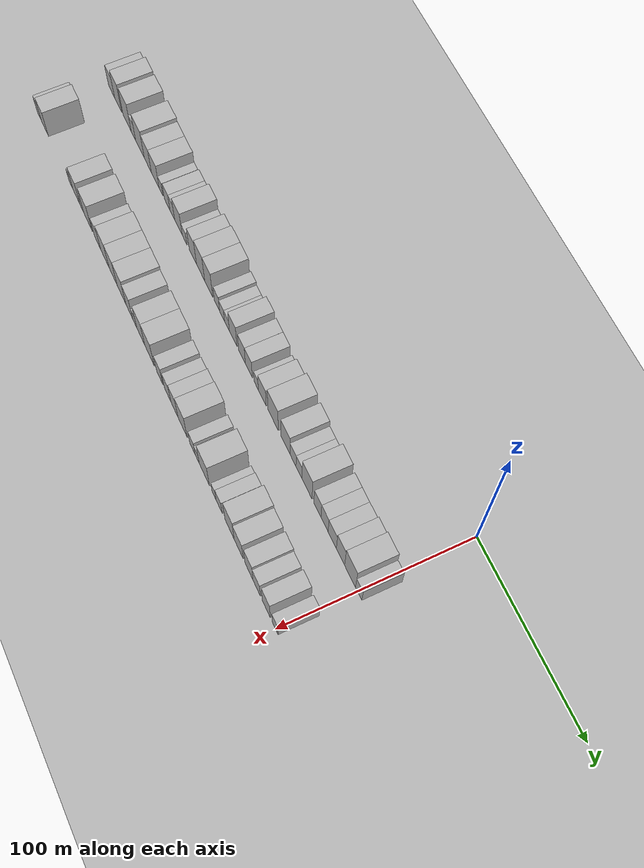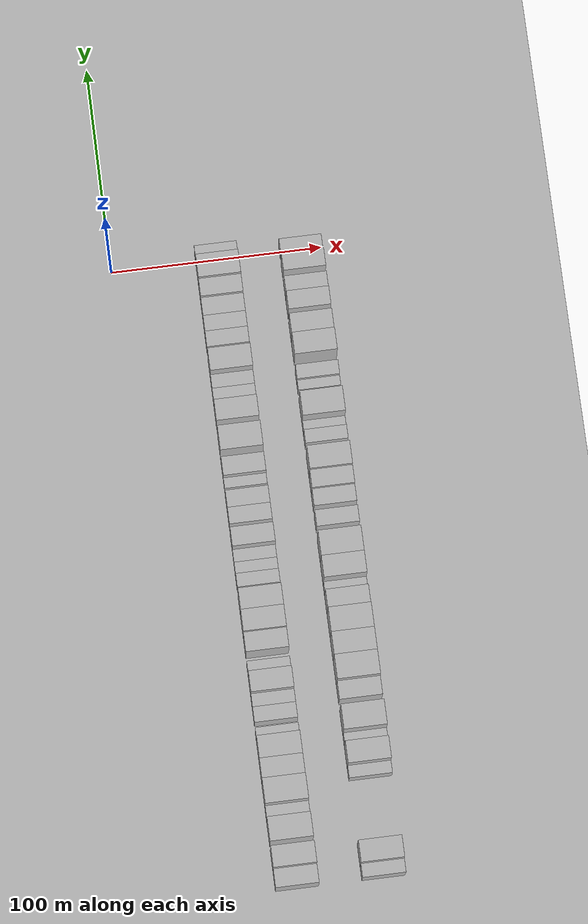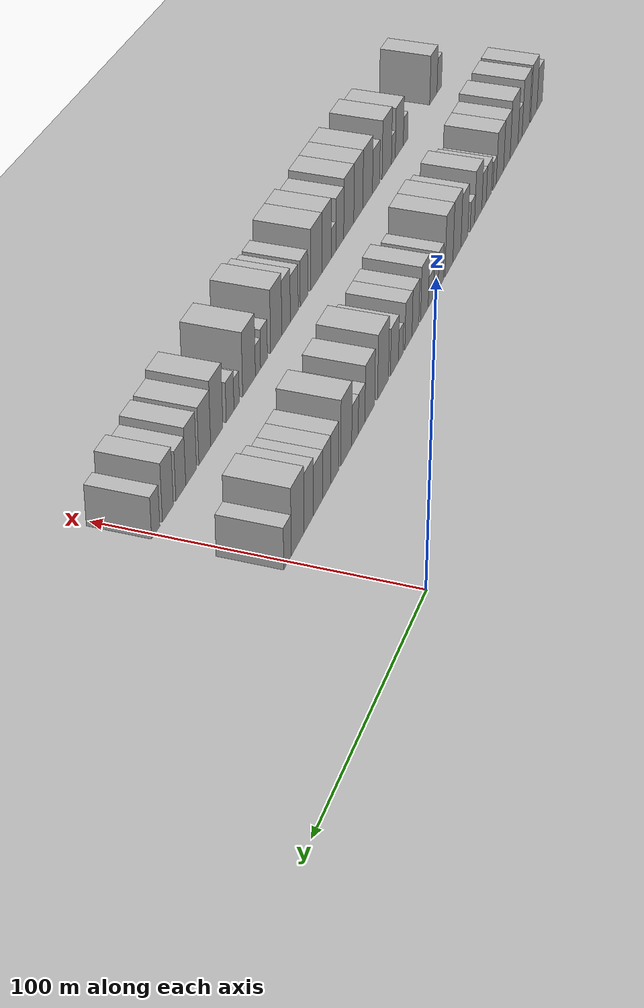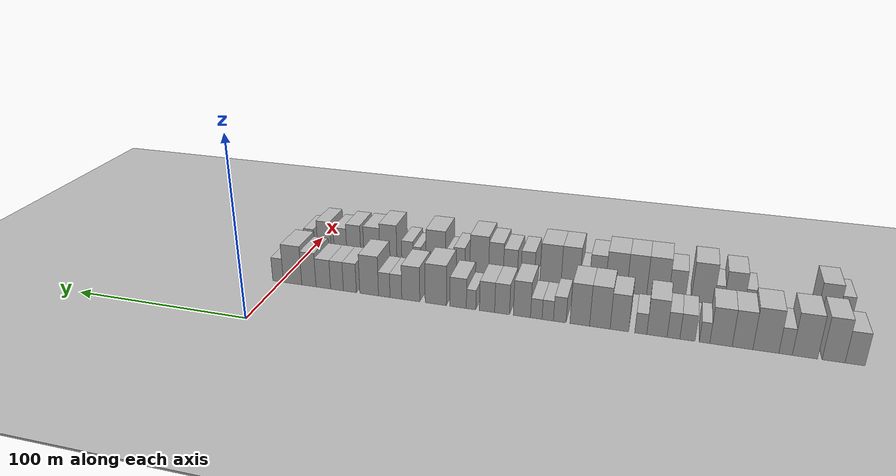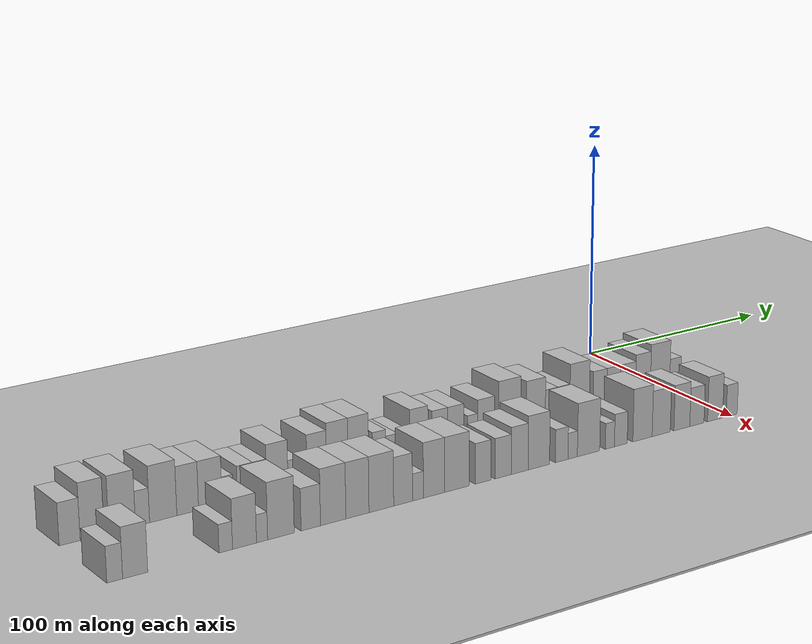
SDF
<sdf version="1.6">
 <world name="default">
  <include><name>ground_plane_1</name><uri>model://HANNAS_ground_plane</uri></include>
  <include>
   <name>ground_plane_2</name>
   <uri>model://HANNAS_ground_plane</uri>
   <pose>100 0 0  0 0 0</pose>
  </include>
  <model name="building_1">
   <static>1</static>
   <pose>50.0000 -295.6604 0 0.000000 0.000000 0.000000</pose>
   <link name="link">
    <pose>0 0 9.00 0 0 0</pose>
    <collision name="collision"><geometry><box><size>20.0000 8.6792 18.0000</size></box></geometry></collision>
    <visual name="visual">
     <cast_shadows>0</cast_shadows>
     <geometry><box><size>20.0000 8.6792 18.0000</size></box></geometry>
     <material>
      <script>
       <uri>model://HANNAS_wall/materials/scripts</uri>
       <uri>model://HANNAS_wall/materials/textures</uri>
       <name>vrc/HANNAS_wall</name>
      </script>
     </material>
    </visual>
   </link>
  </model>
  <model name="building_2">
   <static>1</static>
   <pose>50.0000 -286.3089 0 0.000000 0.000000 0.000000</pose>
   <link name="link">
    <pose>0 0 12.00 0 0 0</pose>
    <collision name="collision"><geometry><box><size>20.0000 10.0237 24.0000</size></box></geometry></collision>
    <visual name="visual">
     <cast_shadows>0</cast_shadows>
     <geometry><box><size>20.0000 10.0237 24.0000</size></box></geometry>
     <material>
      <script>
       <uri>model://HANNAS_wall/materials/scripts</uri>
       <uri>model://HANNAS_wall/materials/textures</uri>
       <name>vrc/HANNAS_wall</name>
      </script>
     </material>
    </visual>
   </link>
  </model>
  <model name="building_3">
   <static>1</static>
   <pose>50.0000 -273.6609 0 0.000000 0.000000 0.000000</pose>
   <link name="link">
    <pose>0 0 12.00 0 0 0</pose>
    <collision name="collision"><geometry><box><size>20.0000 11.2724 24.0000</size></box></geometry></collision>
    <visual name="visual">
     <cast_shadows>0</cast_shadows>
     <geometry><box><size>20.0000 11.2724 24.0000</size></box></geometry>
     <material>
      <script>
       <uri>model://HANNAS_wall/materials/scripts</uri>
       <uri>model://HANNAS_wall/materials/textures</uri>
       <name>vrc/HANNAS_wall</name>
      </script>
     </material>
    </visual>
   </link>
  </model>
  <model name="building_4">
   <static>1</static>
   <pose>50.0000 -264.9814 0 0.000000 0.000000 0.000000</pose>
   <link name="link">
    <pose>0 0 7.50 0 0 0</pose>
    <collision name="collision"><geometry><box><size>20.0000 6.0866 15.0000</size></box></geometry></collision>
    <visual name="visual">
     <cast_shadows>0</cast_shadows>
     <geometry><box><size>20.0000 6.0866 15.0000</size></box></geometry>
     <material>
      <script>
       <uri>model://HANNAS_wall/materials/scripts</uri>
       <uri>model://HANNAS_wall/materials/textures</uri>
       <name>vrc/HANNAS_wall</name>
      </script>
     </material>
    </visual>
   </link>
  </model>
  <model name="building_5">
   <static>1</static>
   <pose>50.0000 -256.0350 0 0.000000 0.000000 0.000000</pose>
   <link name="link">
    <pose>0 0 12.00 0 0 0</pose>
    <collision name="collision"><geometry><box><size>20.0000 11.8062 24.0000</size></box></geometry></collision>
    <visual name="visual">
     <cast_shadows>0</cast_shadows>
     <geometry><box><size>20.0000 11.8062 24.0000</size></box></geometry>
     <material>
      <script>
       <uri>model://HANNAS_wall/materials/scripts</uri>
       <uri>model://HANNAS_wall/materials/textures</uri>
       <name>vrc/HANNAS_wall</name>
      </script>
     </material>
    </visual>
   </link>
  </model>
  <model name="building_6">
   <static>1</static>
   <pose>50.0000 -245.3482 0 0.000000 0.000000 0.000000</pose>
   <link name="link">
    <pose>0 0 10.50 0 0 0</pose>
    <collision name="collision"><geometry><box><size>20.0000 9.5675 21.0000</size></box></geometry></collision>
    <visual name="visual">
     <cast_shadows>0</cast_shadows>
     <geometry><box><size>20.0000 9.5675 21.0000</size></box></geometry>
     <material>
      <script>
       <uri>model://HANNAS_wall/materials/scripts</uri>
       <uri>model://HANNAS_wall/materials/textures</uri>
       <name>vrc/HANNAS_wall</name>
      </script>
     </material>
    </visual>
   </link>
  </model>
  <model name="building_7">
   <static>1</static>
   <pose>50.0000 -235.3438 0 0.000000 0.000000 0.000000</pose>
   <link name="link">
    <pose>0 0 10.50 0 0 0</pose>
    <collision name="collision"><geometry><box><size>20.0000 10.4414 21.0000</size></box></geometry></collision>
    <visual name="visual">
     <cast_shadows>0</cast_shadows>
     <geometry><box><size>20.0000 10.4414 21.0000</size></box></geometry>
     <material>
      <script>
       <uri>model://HANNAS_wall/materials/scripts</uri>
       <uri>model://HANNAS_wall/materials/textures</uri>
       <name>vrc/HANNAS_wall</name>
      </script>
     </material>
    </visual>
   </link>
  </model>
  <model name="building_8">
   <static>1</static>
   <pose>50.0000 -227.6628 0 0.000000 0.000000 0.000000</pose>
   <link name="link">
    <pose>0 0 6.00 0 0 0</pose>
    <collision name="collision"><geometry><box><size>20.0000 4.9206 12.0000</size></box></geometry></collision>
    <visual name="visual">
     <cast_shadows>0</cast_shadows>
     <geometry><box><size>20.0000 4.9206 12.0000</size></box></geometry>
     <material>
      <script>
       <uri>model://HANNAS_wall/materials/scripts</uri>
       <uri>model://HANNAS_wall/materials/textures</uri>
       <name>vrc/HANNAS_wall</name>
      </script>
     </material>
    </visual>
   </link>
  </model>
  <model name="building_9">
   <static>1</static>
   <pose>50.0000 -219.5754 0 0.000000 0.000000 0.000000</pose>
   <link name="link">
    <pose>0 0 7.50 0 0 0</pose>
    <collision name="collision"><geometry><box><size>20.0000 7.2541 15.0000</size></box></geometry></collision>
    <visual name="visual">
     <cast_shadows>0</cast_shadows>
     <geometry><box><size>20.0000 7.2541 15.0000</size></box></geometry>
     <material>
      <script>
       <uri>model://HANNAS_wall/materials/scripts</uri>
       <uri>model://HANNAS_wall/materials/textures</uri>
       <name>vrc/HANNAS_wall</name>
      </script>
     </material>
    </visual>
   </link>
  </model>
  <model name="building_10">
   <static>1</static>
   <pose>50.0000 -212.8982 0 0.000000 0.000000 0.000000</pose>
   <link name="link">
    <pose>0 0 7.50 0 0 0</pose>
    <collision name="collision"><geometry><box><size>20.0000 6.1003 15.0000</size></box></geometry></collision>
    <visual name="visual">
     <cast_shadows>0</cast_shadows>
     <geometry><box><size>20.0000 6.1003 15.0000</size></box></geometry>
     <material>
      <script>
       <uri>model://HANNAS_wall/materials/scripts</uri>
       <uri>model://HANNAS_wall/materials/textures</uri>
       <name>vrc/HANNAS_wall</name>
      </script>
     </material>
    </visual>
   </link>
  </model>
  <model name="building_11">
   <static>1</static>
   <pose>50.0000 -204.9200 0 0.000000 0.000000 0.000000</pose>
   <link name="link">
    <pose>0 0 10.50 0 0 0</pose>
    <collision name="collision"><geometry><box><size>20.0000 9.8560 21.0000</size></box></geometry></collision>
    <visual name="visual">
     <cast_shadows>0</cast_shadows>
     <geometry><box><size>20.0000 9.8560 21.0000</size></box></geometry>
     <material>
      <script>
       <uri>model://HANNAS_wall/materials/scripts</uri>
       <uri>model://HANNAS_wall/materials/textures</uri>
       <name>vrc/HANNAS_wall</name>
      </script>
     </material>
    </visual>
   </link>
  </model>
  <model name="building_12">
   <static>1</static>
   <pose>50.0000 -197.0589 0 0.000000 0.000000 0.000000</pose>
   <link name="link">
    <pose>0 0 6.00 0 0 0</pose>
    <collision name="collision"><geometry><box><size>20.0000 5.8663 12.0000</size></box></geometry></collision>
    <visual name="visual">
     <cast_shadows>0</cast_shadows>
     <geometry><box><size>20.0000 5.8663 12.0000</size></box></geometry>
     <material>
      <script>
       <uri>model://HANNAS_wall/materials/scripts</uri>
       <uri>model://HANNAS_wall/materials/textures</uri>
       <name>vrc/HANNAS_wall</name>
      </script>
     </material>
    </visual>
   </link>
  </model>
  <model name="building_13">
   <static>1</static>
   <pose>50.0000 -186.5327 0 0.000000 0.000000 0.000000</pose>
   <link name="link">
    <pose>0 0 10.50 0 0 0</pose>
    <collision name="collision"><geometry><box><size>20.0000 9.1861 21.0000</size></box></geometry></collision>
    <visual name="visual">
     <cast_shadows>0</cast_shadows>
     <geometry><box><size>20.0000 9.1861 21.0000</size></box></geometry>
     <material>
      <script>
       <uri>model://HANNAS_wall/materials/scripts</uri>
       <uri>model://HANNAS_wall/materials/textures</uri>
       <name>vrc/HANNAS_wall</name>
      </script>
     </material>
    </visual>
   </link>
  </model>
  <model name="building_14">
   <static>1</static>
   <pose>50.0000 -176.8102 0 0.000000 0.000000 0.000000</pose>
   <link name="link">
    <pose>0 0 12.00 0 0 0</pose>
    <collision name="collision"><geometry><box><size>20.0000 10.2588 24.0000</size></box></geometry></collision>
    <visual name="visual">
     <cast_shadows>0</cast_shadows>
     <geometry><box><size>20.0000 10.2588 24.0000</size></box></geometry>
     <material>
      <script>
       <uri>model://HANNAS_wall/materials/scripts</uri>
       <uri>model://HANNAS_wall/materials/textures</uri>
       <name>vrc/HANNAS_wall</name>
      </script>
     </material>
    </visual>
   </link>
  </model>
  <model name="building_15">
   <static>1</static>
   <pose>50.0000 -166.6893 0 0.000000 0.000000 0.000000</pose>
   <link name="link">
    <pose>0 0 12.00 0 0 0</pose>
    <collision name="collision"><geometry><box><size>20.0000 9.9830 24.0000</size></box></geometry></collision>
    <visual name="visual">
     <cast_shadows>0</cast_shadows>
     <geometry><box><size>20.0000 9.9830 24.0000</size></box></geometry>
     <material>
      <script>
       <uri>model://HANNAS_wall/materials/scripts</uri>
       <uri>model://HANNAS_wall/materials/textures</uri>
       <name>vrc/HANNAS_wall</name>
      </script>
     </material>
    </visual>
   </link>
  </model>
  <model name="building_16">
   <static>1</static>
   <pose>50.0000 -156.4822 0 0.000000 0.000000 0.000000</pose>
   <link name="link">
    <pose>0 0 7.50 0 0 0</pose>
    <collision name="collision"><geometry><box><size>20.0000 6.4312 15.0000</size></box></geometry></collision>
    <visual name="visual">
     <cast_shadows>0</cast_shadows>
     <geometry><box><size>20.0000 6.4312 15.0000</size></box></geometry>
     <material>
      <script>
       <uri>model://HANNAS_wall/materials/scripts</uri>
       <uri>model://HANNAS_wall/materials/textures</uri>
       <name>vrc/HANNAS_wall</name>
      </script>
     </material>
    </visual>
   </link>
  </model>
  <model name="building_17">
   <static>1</static>
   <pose>50.0000 -150.3267 0 0.000000 0.000000 0.000000</pose>
   <link name="link">
    <pose>0 0 6.00 0 0 0</pose>
    <collision name="collision"><geometry><box><size>20.0000 5.8798 12.0000</size></box></geometry></collision>
    <visual name="visual">
     <cast_shadows>0</cast_shadows>
     <geometry><box><size>20.0000 5.8798 12.0000</size></box></geometry>
     <material>
      <script>
       <uri>model://HANNAS_wall/materials/scripts</uri>
       <uri>model://HANNAS_wall/materials/textures</uri>
       <name>vrc/HANNAS_wall</name>
      </script>
     </material>
    </visual>
   </link>
  </model>
  <model name="building_18">
   <static>1</static>
   <pose>50.0000 -144.3886 0 0.000000 0.000000 0.000000</pose>
   <link name="link">
    <pose>0 0 6.00 0 0 0</pose>
    <collision name="collision"><geometry><box><size>20.0000 5.9963 12.0000</size></box></geometry></collision>
    <visual name="visual">
     <cast_shadows>0</cast_shadows>
     <geometry><box><size>20.0000 5.9963 12.0000</size></box></geometry>
     <material>
      <script>
       <uri>model://HANNAS_wall/materials/scripts</uri>
       <uri>model://HANNAS_wall/materials/textures</uri>
       <name>vrc/HANNAS_wall</name>
      </script>
     </material>
    </visual>
   </link>
  </model>
  <model name="building_19">
   <static>1</static>
   <pose>50.0000 -136.8716 0 0.000000 0.000000 0.000000</pose>
   <link name="link">
    <pose>0 0 10.50 0 0 0</pose>
    <collision name="collision"><geometry><box><size>20.0000 9.0378 21.0000</size></box></geometry></collision>
    <visual name="visual">
     <cast_shadows>0</cast_shadows>
     <geometry><box><size>20.0000 9.0378 21.0000</size></box></geometry>
     <material>
      <script>
       <uri>model://HANNAS_wall/materials/scripts</uri>
       <uri>model://HANNAS_wall/materials/textures</uri>
       <name>vrc/HANNAS_wall</name>
      </script>
     </material>
    </visual>
   </link>
  </model>
  <model name="building_20">
   <static>1</static>
   <pose>50.0000 -126.3946 0 0.000000 0.000000 0.000000</pose>
   <link name="link">
    <pose>0 0 9.00 0 0 0</pose>
    <collision name="collision"><geometry><box><size>20.0000 7.9164 18.0000</size></box></geometry></collision>
    <visual name="visual">
     <cast_shadows>0</cast_shadows>
     <geometry><box><size>20.0000 7.9164 18.0000</size></box></geometry>
     <material>
      <script>
       <uri>model://HANNAS_wall/materials/scripts</uri>
       <uri>model://HANNAS_wall/materials/textures</uri>
       <name>vrc/HANNAS_wall</name>
      </script>
     </material>
    </visual>
   </link>
  </model>
  <model name="building_21">
   <static>1</static>
   <pose>50.0000 -118.3697 0 0.000000 0.000000 0.000000</pose>
   <link name="link">
    <pose>0 0 9.00 0 0 0</pose>
    <collision name="collision"><geometry><box><size>20.0000 8.1333 18.0000</size></box></geometry></collision>
    <visual name="visual">
     <cast_shadows>0</cast_shadows>
     <geometry><box><size>20.0000 8.1333 18.0000</size></box></geometry>
     <material>
      <script>
       <uri>model://HANNAS_wall/materials/scripts</uri>
       <uri>model://HANNAS_wall/materials/textures</uri>
       <name>vrc/HANNAS_wall</name>
      </script>
     </material>
    </visual>
   </link>
  </model>
  <model name="building_22">
   <static>1</static>
   <pose>50.0000 -109.7680 0 0.000000 0.000000 0.000000</pose>
   <link name="link">
    <pose>0 0 6.00 0 0 0</pose>
    <collision name="collision"><geometry><box><size>20.0000 5.0701 12.0000</size></box></geometry></collision>
    <visual name="visual">
     <cast_shadows>0</cast_shadows>
     <geometry><box><size>20.0000 5.0701 12.0000</size></box></geometry>
     <material>
      <script>
       <uri>model://HANNAS_wall/materials/scripts</uri>
       <uri>model://HANNAS_wall/materials/textures</uri>
       <name>vrc/HANNAS_wall</name>
      </script>
     </material>
    </visual>
   </link>
  </model>
  <model name="building_23">
   <static>1</static>
   <pose>50.0000 -102.7718 0 0.000000 0.000000 0.000000</pose>
   <link name="link">
    <pose>0 0 9.00 0 0 0</pose>
    <collision name="collision"><geometry><box><size>20.0000 8.9224 18.0000</size></box></geometry></collision>
    <visual name="visual">
     <cast_shadows>0</cast_shadows>
     <geometry><box><size>20.0000 8.9224 18.0000</size></box></geometry>
     <material>
      <script>
       <uri>model://HANNAS_wall/materials/scripts</uri>
       <uri>model://HANNAS_wall/materials/textures</uri>
       <name>vrc/HANNAS_wall</name>
      </script>
     </material>
    </visual>
   </link>
  </model>
  <model name="building_24">
   <static>1</static>
   <pose>50.0000 -90.4507 0 0.000000 0.000000 0.000000</pose>
   <link name="link">
    <pose>0 0 12.00 0 0 0</pose>
    <collision name="collision"><geometry><box><size>20.0000 11.7199 24.0000</size></box></geometry></collision>
    <visual name="visual">
     <cast_shadows>0</cast_shadows>
     <geometry><box><size>20.0000 11.7199 24.0000</size></box></geometry>
     <material>
      <script>
       <uri>model://HANNAS_wall/materials/scripts</uri>
       <uri>model://HANNAS_wall/materials/textures</uri>
       <name>vrc/HANNAS_wall</name>
      </script>
     </material>
    </visual>
   </link>
  </model>
  <model name="building_25">
   <static>1</static>
   <pose>50.0000 -76.5439 0 0.000000 0.000000 0.000000</pose>
   <link name="link">
    <pose>0 0 10.50 0 0 0</pose>
    <collision name="collision"><geometry><box><size>20.0000 10.0936 21.0000</size></box></geometry></collision>
    <visual name="visual">
     <cast_shadows>0</cast_shadows>
     <geometry><box><size>20.0000 10.0936 21.0000</size></box></geometry>
     <material>
      <script>
       <uri>model://HANNAS_wall/materials/scripts</uri>
       <uri>model://HANNAS_wall/materials/textures</uri>
       <name>vrc/HANNAS_wall</name>
      </script>
     </material>
    </visual>
   </link>
  </model>
  <model name="building_26">
   <static>1</static>
   <pose>50.0000 -68.1587 0 0.000000 0.000000 0.000000</pose>
   <link name="link">
    <pose>0 0 7.50 0 0 0</pose>
    <collision name="collision"><geometry><box><size>20.0000 6.6767 15.0000</size></box></geometry></collision>
    <visual name="visual">
     <cast_shadows>0</cast_shadows>
     <geometry><box><size>20.0000 6.6767 15.0000</size></box></geometry>
     <material>
      <script>
       <uri>model://HANNAS_wall/materials/scripts</uri>
       <uri>model://HANNAS_wall/materials/textures</uri>
       <name>vrc/HANNAS_wall</name>
      </script>
     </material>
    </visual>
   </link>
  </model>
  <model name="building_27">
   <static>1</static>
   <pose>50.0000 -61.5330 0 0.000000 0.000000 0.000000</pose>
   <link name="link">
    <pose>0 0 7.50 0 0 0</pose>
    <collision name="collision"><geometry><box><size>20.0000 6.5746 15.0000</size></box></geometry></collision>
    <visual name="visual">
     <cast_shadows>0</cast_shadows>
     <geometry><box><size>20.0000 6.5746 15.0000</size></box></geometry>
     <material>
      <script>
       <uri>model://HANNAS_wall/materials/scripts</uri>
       <uri>model://HANNAS_wall/materials/textures</uri>
       <name>vrc/HANNAS_wall</name>
      </script>
     </material>
    </visual>
   </link>
  </model>
  <model name="building_28">
   <static>1</static>
   <pose>50.0000 -52.8710 0 0.000000 0.000000 0.000000</pose>
   <link name="link">
    <pose>0 0 12.00 0 0 0</pose>
    <collision name="collision"><geometry><box><size>20.0000 10.7494 24.0000</size></box></geometry></collision>
    <visual name="visual">
     <cast_shadows>0</cast_shadows>
     <geometry><box><size>20.0000 10.7494 24.0000</size></box></geometry>
     <material>
      <script>
       <uri>model://HANNAS_wall/materials/scripts</uri>
       <uri>model://HANNAS_wall/materials/textures</uri>
       <name>vrc/HANNAS_wall</name>
      </script>
     </material>
    </visual>
   </link>
  </model>
  <model name="building_29">
   <static>1</static>
   <pose>50.0000 -41.6983 0 0.000000 0.000000 0.000000</pose>
   <link name="link">
    <pose>0 0 9.00 0 0 0</pose>
    <collision name="collision"><geometry><box><size>20.0000 7.5961 18.0000</size></box></geometry></collision>
    <visual name="visual">
     <cast_shadows>0</cast_shadows>
     <geometry><box><size>20.0000 7.5961 18.0000</size></box></geometry>
     <material>
      <script>
       <uri>model://HANNAS_wall/materials/scripts</uri>
       <uri>model://HANNAS_wall/materials/textures</uri>
       <name>vrc/HANNAS_wall</name>
      </script>
     </material>
    </visual>
   </link>
  </model>
  <model name="building_30">
   <static>1</static>
   <pose>50.0000 -34.1289 0 0.000000 0.000000 0.000000</pose>
   <link name="link">
    <pose>0 0 9.00 0 0 0</pose>
    <collision name="collision"><geometry><box><size>20.0000 7.5425 18.0000</size></box></geometry></collision>
    <visual name="visual">
     <cast_shadows>0</cast_shadows>
     <geometry><box><size>20.0000 7.5425 18.0000</size></box></geometry>
     <material>
      <script>
       <uri>model://HANNAS_wall/materials/scripts</uri>
       <uri>model://HANNAS_wall/materials/textures</uri>
       <name>vrc/HANNAS_wall</name>
      </script>
     </material>
    </visual>
   </link>
  </model>
  <model name="building_31">
   <static>1</static>
   <pose>50.0000 -26.0431 0 0.000000 0.000000 0.000000</pose>
   <link name="link">
    <pose>0 0 9.00 0 0 0</pose>
    <collision name="collision"><geometry><box><size>20.0000 8.6293 18.0000</size></box></geometry></collision>
    <visual name="visual">
     <cast_shadows>0</cast_shadows>
     <geometry><box><size>20.0000 8.6293 18.0000</size></box></geometry>
     <material>
      <script>
       <uri>model://HANNAS_wall/materials/scripts</uri>
       <uri>model://HANNAS_wall/materials/textures</uri>
       <name>vrc/HANNAS_wall</name>
      </script>
     </material>
    </visual>
   </link>
  </model>
  <model name="building_32">
   <static>1</static>
   <pose>50.0000 -17.4651 0 0.000000 0.000000 0.000000</pose>
   <link name="link">
    <pose>0 0 10.50 0 0 0</pose>
    <collision name="collision"><geometry><box><size>20.0000 8.5266 21.0000</size></box></geometry></collision>
    <visual name="visual">
     <cast_shadows>0</cast_shadows>
     <geometry><box><size>20.0000 8.5266 21.0000</size></box></geometry>
     <material>
      <script>
       <uri>model://HANNAS_wall/materials/scripts</uri>
       <uri>model://HANNAS_wall/materials/textures</uri>
       <name>vrc/HANNAS_wall</name>
      </script>
     </material>
    </visual>
   </link>
  </model>
  <model name="building_33">
   <static>1</static>
   <pose>50.0000 -7.6380 0 0.000000 0.000000 0.000000</pose>
   <link name="link">
    <pose>0 0 12.00 0 0 0</pose>
    <collision name="collision"><geometry><box><size>20.0000 11.1276 24.0000</size></box></geometry></collision>
    <visual name="visual">
     <cast_shadows>0</cast_shadows>
     <geometry><box><size>20.0000 11.1276 24.0000</size></box></geometry>
     <material>
      <script>
       <uri>model://HANNAS_wall/materials/scripts</uri>
       <uri>model://HANNAS_wall/materials/textures</uri>
       <name>vrc/HANNAS_wall</name>
      </script>
     </material>
    </visual>
   </link>
  </model>
  <model name="building_34">
   <static>1</static>
   <pose>50.0000 1.1589 0 0.000000 0.000000 0.000000</pose>
   <link name="link">
    <pose>0 0 7.50 0 0 0</pose>
    <collision name="collision"><geometry><box><size>20.0000 6.4662 15.0000</size></box></geometry></collision>
    <visual name="visual">
     <cast_shadows>0</cast_shadows>
     <geometry><box><size>20.0000 6.4662 15.0000</size></box></geometry>
     <material>
      <script>
       <uri>model://HANNAS_wall/materials/scripts</uri>
       <uri>model://HANNAS_wall/materials/textures</uri>
       <name>vrc/HANNAS_wall</name>
      </script>
     </material>
    </visual>
   </link>
  </model>
  <model name="building_69">
   <static>1</static>
   <pose>90.0000 -296.8135 0 0.000000 0.000000 0.000000</pose>
   <link name="link">
    <pose>0 0 7.50 0 0 0</pose>
    <collision name="collision"><geometry><box><size>20.0000 6.3731 15.0000</size></box></geometry></collision>
    <visual name="visual">
     <cast_shadows>0</cast_shadows>
     <geometry><box><size>20.0000 6.3731 15.0000</size></box></geometry>
     <material>
      <script>
       <uri>model://HANNAS_wall/materials/scripts</uri>
       <uri>model://HANNAS_wall/materials/textures</uri>
       <name>vrc/HANNAS_wall</name>
      </script>
     </material>
    </visual>
   </link>
  </model>
  <model name="building_70">
   <static>1</static>
   <pose>90.0000 -288.5178 0 0.000000 0.000000 0.000000</pose>
   <link name="link">
    <pose>0 0 10.50 0 0 0</pose>
    <collision name="collision"><geometry><box><size>20.0000 10.2183 21.0000</size></box></geometry></collision>
    <visual name="visual">
     <cast_shadows>0</cast_shadows>
     <geometry><box><size>20.0000 10.2183 21.0000</size></box></geometry>
     <material>
      <script>
       <uri>model://HANNAS_wall/materials/scripts</uri>
       <uri>model://HANNAS_wall/materials/textures</uri>
       <name>vrc/HANNAS_wall</name>
      </script>
     </material>
    </visual>
   </link>
  </model>
  <model name="building_71">
   <static>1</static>
   <pose>90.0000 -250.7756 0 0.000000 0.000000 0.000000</pose>
   <link name="link">
    <pose>0 0 6.00 0 0 0</pose>
    <collision name="collision"><geometry><box><size>20.0000 5.7553 12.0000</size></box></geometry></collision>
    <visual name="visual">
     <cast_shadows>0</cast_shadows>
     <geometry><box><size>20.0000 5.7553 12.0000</size></box></geometry>
     <material>
      <script>
       <uri>model://HANNAS_wall/materials/scripts</uri>
       <uri>model://HANNAS_wall/materials/textures</uri>
       <name>vrc/HANNAS_wall</name>
      </script>
     </material>
    </visual>
   </link>
  </model>
  <model name="building_72">
   <static>1</static>
   <pose>90.0000 -242.7215 0 0.000000 0.000000 0.000000</pose>
   <link name="link">
    <pose>0 0 10.50 0 0 0</pose>
    <collision name="collision"><geometry><box><size>20.0000 10.3529 21.0000</size></box></geometry></collision>
    <visual name="visual">
     <cast_shadows>0</cast_shadows>
     <geometry><box><size>20.0000 10.3529 21.0000</size></box></geometry>
     <material>
      <script>
       <uri>model://HANNAS_wall/materials/scripts</uri>
       <uri>model://HANNAS_wall/materials/textures</uri>
       <name>vrc/HANNAS_wall</name>
      </script>
     </material>
    </visual>
   </link>
  </model>
  <model name="building_73">
   <static>1</static>
   <pose>90.0000 -235.1049 0 0.000000 0.000000 0.000000</pose>
   <link name="link">
    <pose>0 0 6.00 0 0 0</pose>
    <collision name="collision"><geometry><box><size>20.0000 4.8804 12.0000</size></box></geometry></collision>
    <visual name="visual">
     <cast_shadows>0</cast_shadows>
     <geometry><box><size>20.0000 4.8804 12.0000</size></box></geometry>
     <material>
      <script>
       <uri>model://HANNAS_wall/materials/scripts</uri>
       <uri>model://HANNAS_wall/materials/textures</uri>
       <name>vrc/HANNAS_wall</name>
      </script>
     </material>
    </visual>
   </link>
  </model>
  <model name="building_74">
   <static>1</static>
   <pose>90.0000 -226.8031 0 0.000000 0.000000 0.000000</pose>
   <link name="link">
    <pose>0 0 12.00 0 0 0</pose>
    <collision name="collision"><geometry><box><size>20.0000 11.7233 24.0000</size></box></geometry></collision>
    <visual name="visual">
     <cast_shadows>0</cast_shadows>
     <geometry><box><size>20.0000 11.7233 24.0000</size></box></geometry>
     <material>
      <script>
       <uri>model://HANNAS_wall/materials/scripts</uri>
       <uri>model://HANNAS_wall/materials/textures</uri>
       <name>vrc/HANNAS_wall</name>
      </script>
     </material>
    </visual>
   </link>
  </model>
  <model name="building_75">
   <static>1</static>
   <pose>90.0000 -213.5939 0 0.000000 0.000000 0.000000</pose>
   <link name="link">
    <pose>0 0 9.00 0 0 0</pose>
    <collision name="collision"><geometry><box><size>20.0000 8.6951 18.0000</size></box></geometry></collision>
    <visual name="visual">
     <cast_shadows>0</cast_shadows>
     <geometry><box><size>20.0000 8.6951 18.0000</size></box></geometry>
     <material>
      <script>
       <uri>model://HANNAS_wall/materials/scripts</uri>
       <uri>model://HANNAS_wall/materials/textures</uri>
       <name>vrc/HANNAS_wall</name>
      </script>
     </material>
    </visual>
   </link>
  </model>
  <model name="building_76">
   <static>1</static>
   <pose>90.0000 -203.4850 0 0.000000 0.000000 0.000000</pose>
   <link name="link">
    <pose>0 0 12.00 0 0 0</pose>
    <collision name="collision"><geometry><box><size>20.0000 11.5227 24.0000</size></box></geometry></collision>
    <visual name="visual">
     <cast_shadows>0</cast_shadows>
     <geometry><box><size>20.0000 11.5227 24.0000</size></box></geometry>
     <material>
      <script>
       <uri>model://HANNAS_wall/materials/scripts</uri>
       <uri>model://HANNAS_wall/materials/textures</uri>
       <name>vrc/HANNAS_wall</name>
      </script>
     </material>
    </visual>
   </link>
  </model>
  <model name="building_77">
   <static>1</static>
   <pose>90.0000 -192.4300 0 0.000000 0.000000 0.000000</pose>
   <link name="link">
    <pose>0 0 12.00 0 0 0</pose>
    <collision name="collision"><geometry><box><size>20.0000 10.5872 24.0000</size></box></geometry></collision>
    <visual name="visual">
     <cast_shadows>0</cast_shadows>
     <geometry><box><size>20.0000 10.5872 24.0000</size></box></geometry>
     <material>
      <script>
       <uri>model://HANNAS_wall/materials/scripts</uri>
       <uri>model://HANNAS_wall/materials/textures</uri>
       <name>vrc/HANNAS_wall</name>
      </script>
     </material>
    </visual>
   </link>
  </model>
  <model name="building_78">
   <static>1</static>
   <pose>90.0000 -181.3833 0 0.000000 0.000000 0.000000</pose>
   <link name="link">
    <pose>0 0 12.00 0 0 0</pose>
    <collision name="collision"><geometry><box><size>20.0000 11.5062 24.0000</size></box></geometry></collision>
    <visual name="visual">
     <cast_shadows>0</cast_shadows>
     <geometry><box><size>20.0000 11.5062 24.0000</size></box></geometry>
     <material>
      <script>
       <uri>model://HANNAS_wall/materials/scripts</uri>
       <uri>model://HANNAS_wall/materials/textures</uri>
       <name>vrc/HANNAS_wall</name>
      </script>
     </material>
    </visual>
   </link>
  </model>
  <model name="building_79">
   <static>1</static>
   <pose>90.0000 -171.1926 0 0.000000 0.000000 0.000000</pose>
   <link name="link">
    <pose>0 0 10.50 0 0 0</pose>
    <collision name="collision"><geometry><box><size>20.0000 8.8752 21.0000</size></box></geometry></collision>
    <visual name="visual">
     <cast_shadows>0</cast_shadows>
     <geometry><box><size>20.0000 8.8752 21.0000</size></box></geometry>
     <material>
      <script>
       <uri>model://HANNAS_wall/materials/scripts</uri>
       <uri>model://HANNAS_wall/materials/textures</uri>
       <name>vrc/HANNAS_wall</name>
      </script>
     </material>
    </visual>
   </link>
  </model>
  <model name="building_80">
   <static>1</static>
   <pose>90.0000 -164.1821 0 0.000000 0.000000 0.000000</pose>
   <link name="link">
    <pose>0 0 6.00 0 0 0</pose>
    <collision name="collision"><geometry><box><size>20.0000 5.1458 12.0000</size></box></geometry></collision>
    <visual name="visual">
     <cast_shadows>0</cast_shadows>
     <geometry><box><size>20.0000 5.1458 12.0000</size></box></geometry>
     <material>
      <script>
       <uri>model://HANNAS_wall/materials/scripts</uri>
       <uri>model://HANNAS_wall/materials/textures</uri>
       <name>vrc/HANNAS_wall</name>
      </script>
     </material>
    </visual>
   </link>
  </model>
  <model name="building_81">
   <static>1</static>
   <pose>90.0000 -156.4600 0 0.000000 0.000000 0.000000</pose>
   <link name="link">
    <pose>0 0 12.00 0 0 0</pose>
    <collision name="collision"><geometry><box><size>20.0000 10.2984 24.0000</size></box></geometry></collision>
    <visual name="visual">
     <cast_shadows>0</cast_shadows>
     <geometry><box><size>20.0000 10.2984 24.0000</size></box></geometry>
     <material>
      <script>
       <uri>model://HANNAS_wall/materials/scripts</uri>
       <uri>model://HANNAS_wall/materials/textures</uri>
       <name>vrc/HANNAS_wall</name>
      </script>
     </material>
    </visual>
   </link>
  </model>
  <model name="building_82">
   <static>1</static>
   <pose>90.0000 -145.3861 0 0.000000 0.000000 0.000000</pose>
   <link name="link">
    <pose>0 0 12.00 0 0 0</pose>
    <collision name="collision"><geometry><box><size>20.0000 11.8493 24.0000</size></box></geometry></collision>
    <visual name="visual">
     <cast_shadows>0</cast_shadows>
     <geometry><box><size>20.0000 11.8493 24.0000</size></box></geometry>
     <material>
      <script>
       <uri>model://HANNAS_wall/materials/scripts</uri>
       <uri>model://HANNAS_wall/materials/textures</uri>
       <name>vrc/HANNAS_wall</name>
      </script>
     </material>
    </visual>
   </link>
  </model>
  <model name="building_83">
   <static>1</static>
   <pose>90.0000 -132.5765 0 0.000000 0.000000 0.000000</pose>
   <link name="link">
    <pose>0 0 9.00 0 0 0</pose>
    <collision name="collision"><geometry><box><size>20.0000 7.7699 18.0000</size></box></geometry></collision>
    <visual name="visual">
     <cast_shadows>0</cast_shadows>
     <geometry><box><size>20.0000 7.7699 18.0000</size></box></geometry>
     <material>
      <script>
       <uri>model://HANNAS_wall/materials/scripts</uri>
       <uri>model://HANNAS_wall/materials/textures</uri>
       <name>vrc/HANNAS_wall</name>
      </script>
     </material>
    </visual>
   </link>
  </model>
  <model name="building_84">
   <static>1</static>
   <pose>90.0000 -122.6760 0 0.000000 0.000000 0.000000</pose>
   <link name="link">
    <pose>0 0 9.00 0 0 0</pose>
    <collision name="collision"><geometry><box><size>20.0000 8.0311 18.0000</size></box></geometry></collision>
    <visual name="visual">
     <cast_shadows>0</cast_shadows>
     <geometry><box><size>20.0000 8.0311 18.0000</size></box></geometry>
     <material>
      <script>
       <uri>model://HANNAS_wall/materials/scripts</uri>
       <uri>model://HANNAS_wall/materials/textures</uri>
       <name>vrc/HANNAS_wall</name>
      </script>
     </material>
    </visual>
   </link>
  </model>
  <model name="building_85">
   <static>1</static>
   <pose>90.0000 -114.4024 0 0.000000 0.000000 0.000000</pose>
   <link name="link">
    <pose>0 0 10.50 0 0 0</pose>
    <collision name="collision"><geometry><box><size>20.0000 8.5161 21.0000</size></box></geometry></collision>
    <visual name="visual">
     <cast_shadows>0</cast_shadows>
     <geometry><box><size>20.0000 8.5161 21.0000</size></box></geometry>
     <material>
      <script>
       <uri>model://HANNAS_wall/materials/scripts</uri>
       <uri>model://HANNAS_wall/materials/textures</uri>
       <name>vrc/HANNAS_wall</name>
      </script>
     </material>
    </visual>
   </link>
  </model>
  <model name="building_86">
   <static>1</static>
   <pose>90.0000 -104.6756 0 0.000000 0.000000 0.000000</pose>
   <link name="link">
    <pose>0 0 12.00 0 0 0</pose>
    <collision name="collision"><geometry><box><size>20.0000 10.9374 24.0000</size></box></geometry></collision>
    <visual name="visual">
     <cast_shadows>0</cast_shadows>
     <geometry><box><size>20.0000 10.9374 24.0000</size></box></geometry>
     <material>
      <script>
       <uri>model://HANNAS_wall/materials/scripts</uri>
       <uri>model://HANNAS_wall/materials/textures</uri>
       <name>vrc/HANNAS_wall</name>
      </script>
     </material>
    </visual>
   </link>
  </model>
  <model name="building_87">
   <static>1</static>
   <pose>90.0000 -92.9414 0 0.000000 0.000000 0.000000</pose>
   <link name="link">
    <pose>0 0 7.50 0 0 0</pose>
    <collision name="collision"><geometry><box><size>20.0000 6.5311 15.0000</size></box></geometry></collision>
    <visual name="visual">
     <cast_shadows>0</cast_shadows>
     <geometry><box><size>20.0000 6.5311 15.0000</size></box></geometry>
     <material>
      <script>
       <uri>model://HANNAS_wall/materials/scripts</uri>
       <uri>model://HANNAS_wall/materials/textures</uri>
       <name>vrc/HANNAS_wall</name>
      </script>
     </material>
    </visual>
   </link>
  </model>
  <model name="building_88">
   <static>1</static>
   <pose>90.0000 -87.2424 0 0.000000 0.000000 0.000000</pose>
   <link name="link">
    <pose>0 0 6.00 0 0 0</pose>
    <collision name="collision"><geometry><box><size>20.0000 4.8669 12.0000</size></box></geometry></collision>
    <visual name="visual">
     <cast_shadows>0</cast_shadows>
     <geometry><box><size>20.0000 4.8669 12.0000</size></box></geometry>
     <material>
      <script>
       <uri>model://HANNAS_wall/materials/scripts</uri>
       <uri>model://HANNAS_wall/materials/textures</uri>
       <name>vrc/HANNAS_wall</name>
      </script>
     </material>
    </visual>
   </link>
  </model>
  <model name="building_89">
   <static>1</static>
   <pose>90.0000 -78.9358 0 0.000000 0.000000 0.000000</pose>
   <link name="link">
    <pose>0 0 12.00 0 0 0</pose>
    <collision name="collision"><geometry><box><size>20.0000 11.7462 24.0000</size></box></geometry></collision>
    <visual name="visual">
     <cast_shadows>0</cast_shadows>
     <geometry><box><size>20.0000 11.7462 24.0000</size></box></geometry>
     <material>
      <script>
       <uri>model://HANNAS_wall/materials/scripts</uri>
       <uri>model://HANNAS_wall/materials/textures</uri>
       <name>vrc/HANNAS_wall</name>
      </script>
     </material>
    </visual>
   </link>
  </model>
  <model name="building_90">
   <static>1</static>
   <pose>90.0000 -67.6528 0 0.000000 0.000000 0.000000</pose>
   <link name="link">
    <pose>0 0 6.00 0 0 0</pose>
    <collision name="collision"><geometry><box><size>20.0000 4.8198 12.0000</size></box></geometry></collision>
    <visual name="visual">
     <cast_shadows>0</cast_shadows>
     <geometry><box><size>20.0000 4.8198 12.0000</size></box></geometry>
     <material>
      <script>
       <uri>model://HANNAS_wall/materials/scripts</uri>
       <uri>model://HANNAS_wall/materials/textures</uri>
       <name>vrc/HANNAS_wall</name>
      </script>
     </material>
    </visual>
   </link>
  </model>
  <model name="building_91">
   <static>1</static>
   <pose>90.0000 -61.8076 0 0.000000 0.000000 0.000000</pose>
   <link name="link">
    <pose>0 0 7.50 0 0 0</pose>
    <collision name="collision"><geometry><box><size>20.0000 6.8707 15.0000</size></box></geometry></collision>
    <visual name="visual">
     <cast_shadows>0</cast_shadows>
     <geometry><box><size>20.0000 6.8707 15.0000</size></box></geometry>
     <material>
      <script>
       <uri>model://HANNAS_wall/materials/scripts</uri>
       <uri>model://HANNAS_wall/materials/textures</uri>
       <name>vrc/HANNAS_wall</name>
      </script>
     </material>
    </visual>
   </link>
  </model>
  <model name="building_92">
   <static>1</static>
   <pose>90.0000 -50.1270 0 0.000000 0.000000 0.000000</pose>
   <link name="link">
    <pose>0 0 12.00 0 0 0</pose>
    <collision name="collision"><geometry><box><size>20.0000 10.4905 24.0000</size></box></geometry></collision>
    <visual name="visual">
     <cast_shadows>0</cast_shadows>
     <geometry><box><size>20.0000 10.4905 24.0000</size></box></geometry>
     <material>
      <script>
       <uri>model://HANNAS_wall/materials/scripts</uri>
       <uri>model://HANNAS_wall/materials/textures</uri>
       <name>vrc/HANNAS_wall</name>
      </script>
     </material>
    </visual>
   </link>
  </model>
  <model name="building_93">
   <static>1</static>
   <pose>90.0000 -39.9150 0 0.000000 0.000000 0.000000</pose>
   <link name="link">
    <pose>0 0 10.50 0 0 0</pose>
    <collision name="collision"><geometry><box><size>20.0000 9.9336 21.0000</size></box></geometry></collision>
    <visual name="visual">
     <cast_shadows>0</cast_shadows>
     <geometry><box><size>20.0000 9.9336 21.0000</size></box></geometry>
     <material>
      <script>
       <uri>model://HANNAS_wall/materials/scripts</uri>
       <uri>model://HANNAS_wall/materials/textures</uri>
       <name>vrc/HANNAS_wall</name>
      </script>
     </material>
    </visual>
   </link>
  </model>
  <model name="building_94">
   <static>1</static>
   <pose>90.0000 -28.5266 0 0.000000 0.000000 0.000000</pose>
   <link name="link">
    <pose>0 0 10.50 0 0 0</pose>
    <collision name="collision"><geometry><box><size>20.0000 8.8432 21.0000</size></box></geometry></collision>
    <visual name="visual">
     <cast_shadows>0</cast_shadows>
     <geometry><box><size>20.0000 8.8432 21.0000</size></box></geometry>
     <material>
      <script>
       <uri>model://HANNAS_wall/materials/scripts</uri>
       <uri>model://HANNAS_wall/materials/textures</uri>
       <name>vrc/HANNAS_wall</name>
      </script>
     </material>
    </visual>
   </link>
  </model>
  <model name="building_95">
   <static>1</static>
   <pose>90.0000 -20.1255 0 0.000000 0.000000 0.000000</pose>
   <link name="link">
    <pose>0 0 9.00 0 0 0</pose>
    <collision name="collision"><geometry><box><size>20.0000 7.9589 18.0000</size></box></geometry></collision>
    <visual name="visual">
     <cast_shadows>0</cast_shadows>
     <geometry><box><size>20.0000 7.9589 18.0000</size></box></geometry>
     <material>
      <script>
       <uri>model://HANNAS_wall/materials/scripts</uri>
       <uri>model://HANNAS_wall/materials/textures</uri>
       <name>vrc/HANNAS_wall</name>
      </script>
     </material>
    </visual>
   </link>
  </model>
  <model name="building_96">
   <static>1</static>
   <pose>90.0000 -9.8461 0 0.000000 0.000000 0.000000</pose>
   <link name="link">
    <pose>0 0 10.50 0 0 0</pose>
    <collision name="collision"><geometry><box><size>20.0000 8.5999 21.0000</size></box></geometry></collision>
    <visual name="visual">
     <cast_shadows>0</cast_shadows>
     <geometry><box><size>20.0000 8.5999 21.0000</size></box></geometry>
     <material>
      <script>
       <uri>model://HANNAS_wall/materials/scripts</uri>
       <uri>model://HANNAS_wall/materials/textures</uri>
       <name>vrc/HANNAS_wall</name>
      </script>
     </material>
    </visual>
   </link>
  </model>
  <model name="building_97">
   <static>1</static>
   <pose>90.0000 -0.3905 0 0.000000 0.000000 0.000000</pose>
   <link name="link">
    <pose>0 0 7.50 0 0 0</pose>
    <collision name="collision"><geometry><box><size>20.0000 6.3113 15.0000</size></box></geometry></collision>
    <visual name="visual">
     <cast_shadows>0</cast_shadows>
     <geometry><box><size>20.0000 6.3113 15.0000</size></box></geometry>
     <material>
      <script>
       <uri>model://HANNAS_wall/materials/scripts</uri>
       <uri>model://HANNAS_wall/materials/textures</uri>
       <name>vrc/HANNAS_wall</name>
      </script>
     </material>
    </visual>
   </link>
  </model>
 </world>
</sdf>
